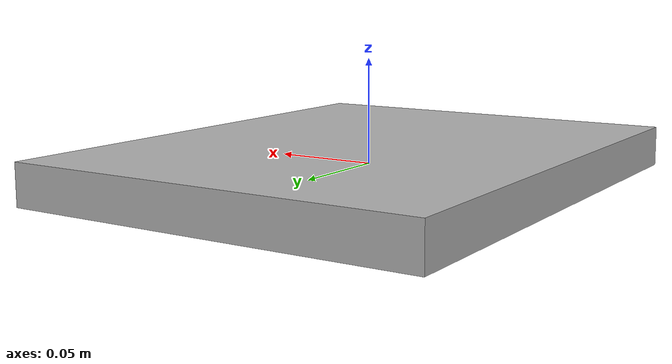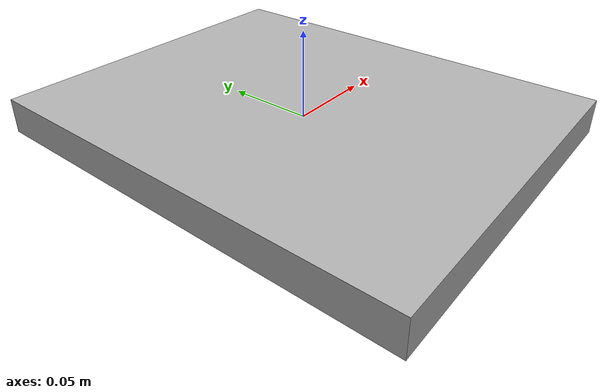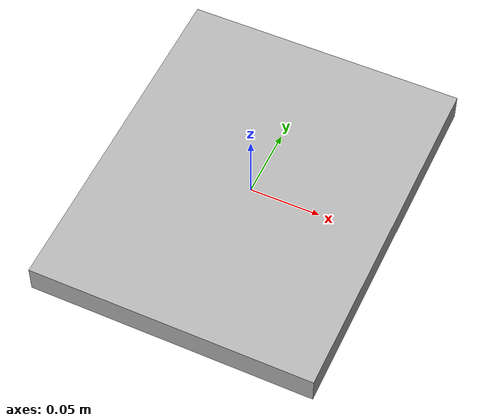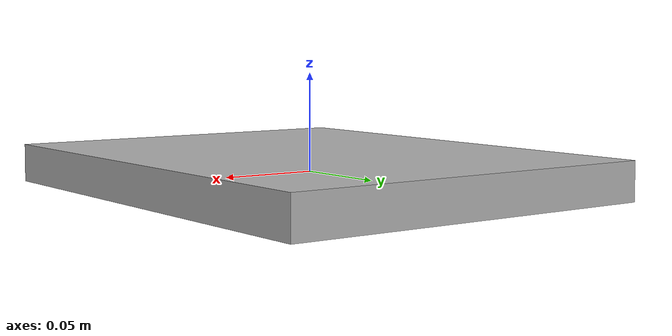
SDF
<?xml version="1.0"?>
<!-- Componente "bandeja_piezas" de la biblioteca del contrato 2.0. Origen = centro geométrico. -->
<sdf version="1.9"><model name='bandeja_piezas'><static>true</static><link name='link'><collision name='c'><geometry><box><size>0.2 0.25 0.02</size></box></geometry></collision><visual name='v'><geometry><box><size>0.2 0.25 0.02</size></box></geometry><material><ambient>0.7 0.7 0.7 1</ambient><diffuse>0.7 0.7 0.7 1</diffuse></material></visual></link></model></sdf>
